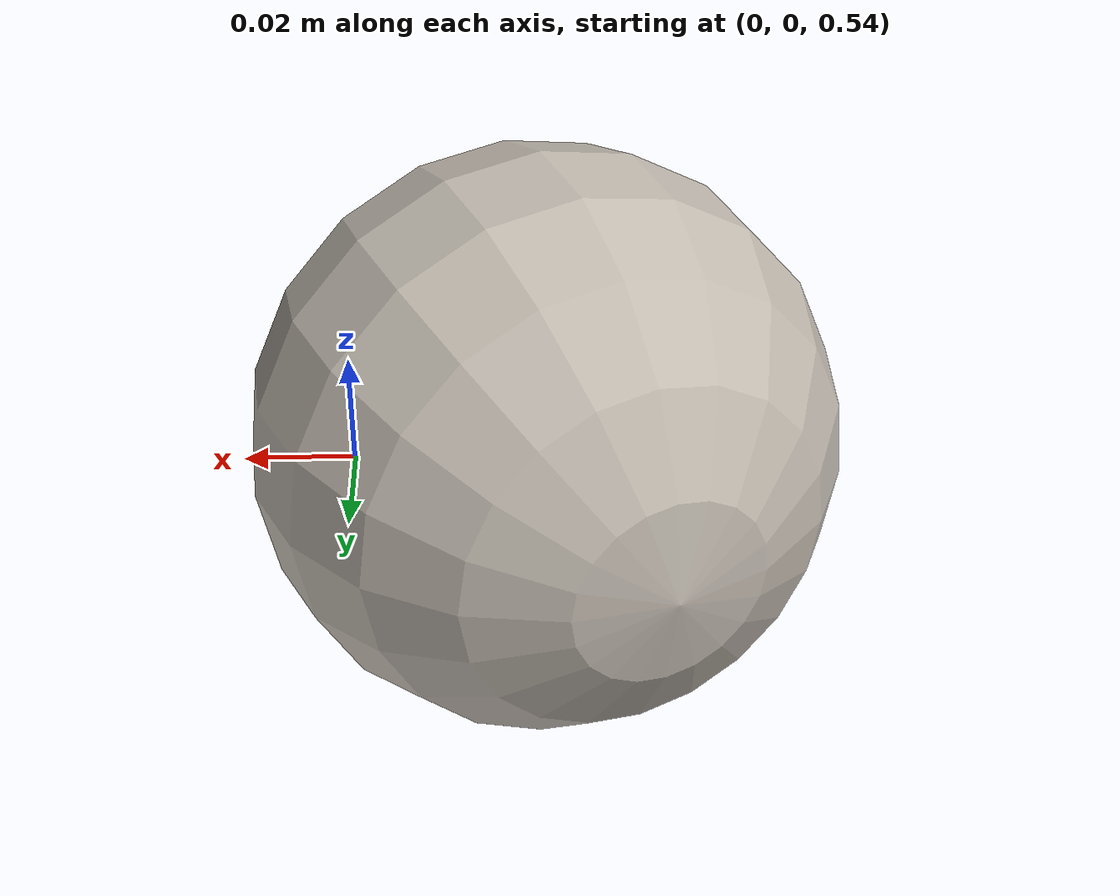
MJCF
<mujoco model="leap_hand_state_cycle_beach_ball">
  <asset>
    <texture name="leap_state_cycle_beach_ball_tex" type="2d"
             file="beach_ball_state_cycle.png"/>
    <material name="leap_state_cycle_beach_ball_material"
              texture="leap_state_cycle_beach_ball_tex"
              specular="0.25" shininess="0.35"/>
  </asset>

  <worldbody>
    <body name="leap_object" pos="-0.03 0.04 0.57">
      <freejoint name="leap_object_joint"/>
      <inertial pos="0 0 0" mass="0.05" diaginertia="0.0001 0.0001 0.0001"/>
      <geom name="leap_object_col" type="sphere" size="0.04"
            quat="0.692406177520752 0.6846243739128113 0.2277115434408188 -0.0032545626163482666"
            mass="0.05" material="leap_state_cycle_beach_ball_material" condim="6"
            friction="2.0 0.05 0.01" solimp="0.9 0.95 0.001" solref="0.02 1"/>
    </body>
  </worldbody>
</mujoco>
